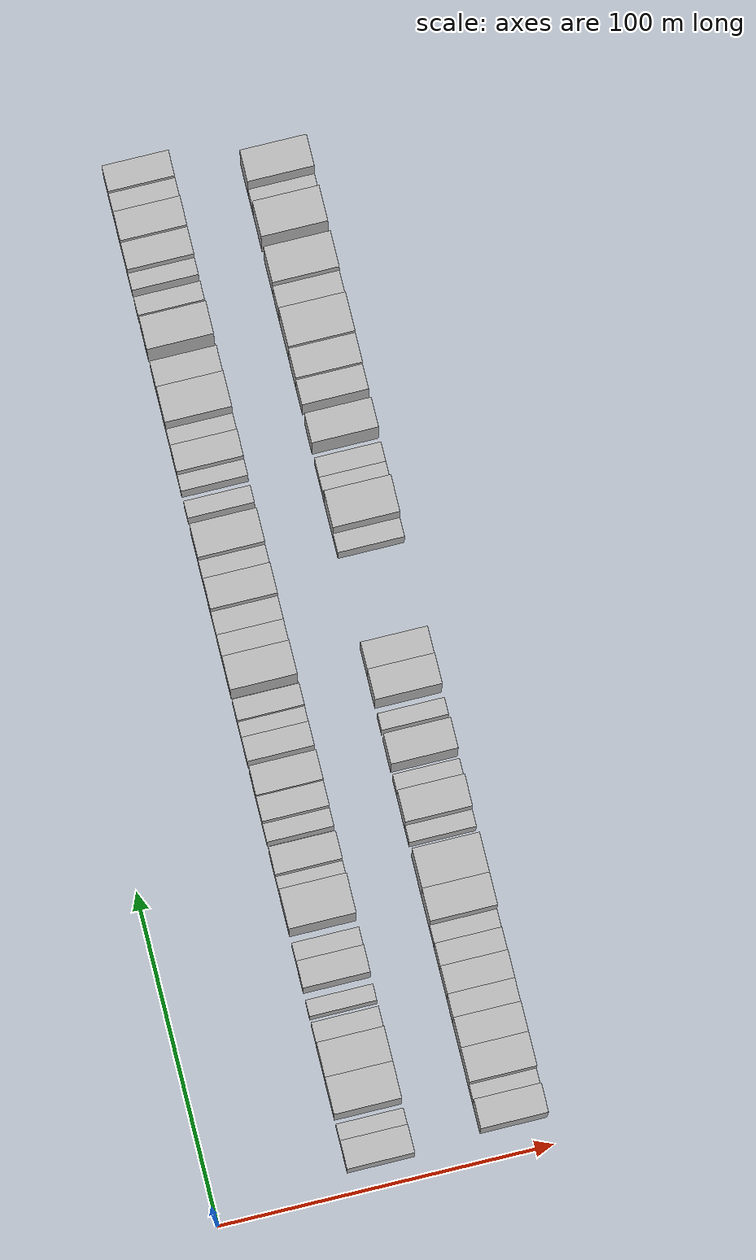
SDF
<sdf version="1.6">
 <world name="default">
  <model name="building_33">
   <static>1</static>
   <pose>50.0000 10.4126 0 0.000000 0.000000 0.000000</pose>
   <link name="link">
    <pose>0 0 9.00 0 0 0</pose>
    <collision name="collision"><geometry><box><size>20.0000 8.4670 18.0000</size></box></geometry></collision>
    <visual name="visual">
     <cast_shadows>0</cast_shadows>
     <geometry><box><size>20.0000 8.4670 18.0000</size></box></geometry>
     <material>
      <script>
       <uri>model://HANNAS_wall/materials/scripts</uri>
       <uri>model://HANNAS_wall/materials/textures</uri>
       <name>vrc/HANNAS_wall</name>
      </script>
     </material>
    </visual>
   </link>
  </model>
  <model name="building_34">
   <static>1</static>
   <pose>50.0000 17.2850 0 0.000000 0.000000 0.000000</pose>
   <link name="link">
    <pose>0 0 6.00 0 0 0</pose>
    <collision name="collision"><geometry><box><size>20.0000 5.2779 12.0000</size></box></geometry></collision>
    <visual name="visual">
     <cast_shadows>0</cast_shadows>
     <geometry><box><size>20.0000 5.2779 12.0000</size></box></geometry>
     <material>
      <script>
       <uri>model://HANNAS_wall/materials/scripts</uri>
       <uri>model://HANNAS_wall/materials/textures</uri>
       <name>vrc/HANNAS_wall</name>
      </script>
     </material>
    </visual>
   </link>
  </model>
  <model name="building_35">
   <static>1</static>
   <pose>50.0000 27.4227 0 0.000000 0.000000 0.000000</pose>
   <link name="link">
    <pose>0 0 12.00 0 0 0</pose>
    <collision name="collision"><geometry><box><size>20.0000 10.9975 24.0000</size></box></geometry></collision>
    <visual name="visual">
     <cast_shadows>0</cast_shadows>
     <geometry><box><size>20.0000 10.9975 24.0000</size></box></geometry>
     <material>
      <script>
       <uri>model://HANNAS_wall/materials/scripts</uri>
       <uri>model://HANNAS_wall/materials/textures</uri>
       <name>vrc/HANNAS_wall</name>
      </script>
     </material>
    </visual>
   </link>
  </model>
  <model name="building_36">
   <static>1</static>
   <pose>50.0000 38.0736 0 0.000000 0.000000 0.000000</pose>
   <link name="link">
    <pose>0 0 12.00 0 0 0</pose>
    <collision name="collision"><geometry><box><size>20.0000 10.3042 24.0000</size></box></geometry></collision>
    <visual name="visual">
     <cast_shadows>0</cast_shadows>
     <geometry><box><size>20.0000 10.3042 24.0000</size></box></geometry>
     <material>
      <script>
       <uri>model://HANNAS_wall/materials/scripts</uri>
       <uri>model://HANNAS_wall/materials/textures</uri>
       <name>vrc/HANNAS_wall</name>
      </script>
     </material>
    </visual>
   </link>
  </model>
  <model name="building_37">
   <static>1</static>
   <pose>50.0000 46.5629 0 0.000000 0.000000 0.000000</pose>
   <link name="link">
    <pose>0 0 7.50 0 0 0</pose>
    <collision name="collision"><geometry><box><size>20.0000 6.6744 15.0000</size></box></geometry></collision>
    <visual name="visual">
     <cast_shadows>0</cast_shadows>
     <geometry><box><size>20.0000 6.6744 15.0000</size></box></geometry>
     <material>
      <script>
       <uri>model://HANNAS_wall/materials/scripts</uri>
       <uri>model://HANNAS_wall/materials/textures</uri>
       <name>vrc/HANNAS_wall</name>
      </script>
     </material>
    </visual>
   </link>
  </model>
  <model name="building_38">
   <static>1</static>
   <pose>50.0000 54.3566 0 0.000000 0.000000 0.000000</pose>
   <link name="link">
    <pose>0 0 6.00 0 0 0</pose>
    <collision name="collision"><geometry><box><size>20.0000 4.9131 12.0000</size></box></geometry></collision>
    <visual name="visual">
     <cast_shadows>0</cast_shadows>
     <geometry><box><size>20.0000 4.9131 12.0000</size></box></geometry>
     <material>
      <script>
       <uri>model://HANNAS_wall/materials/scripts</uri>
       <uri>model://HANNAS_wall/materials/textures</uri>
       <name>vrc/HANNAS_wall</name>
      </script>
     </material>
    </visual>
   </link>
  </model>
  <model name="building_39">
   <static>1</static>
   <pose>50.0000 63.8687 0 0.000000 0.000000 0.000000</pose>
   <link name="link">
    <pose>0 0 9.00 0 0 0</pose>
    <collision name="collision"><geometry><box><size>20.0000 8.1110 18.0000</size></box></geometry></collision>
    <visual name="visual">
     <cast_shadows>0</cast_shadows>
     <geometry><box><size>20.0000 8.1110 18.0000</size></box></geometry>
     <material>
      <script>
       <uri>model://HANNAS_wall/materials/scripts</uri>
       <uri>model://HANNAS_wall/materials/textures</uri>
       <name>vrc/HANNAS_wall</name>
      </script>
     </material>
    </visual>
   </link>
  </model>
  <model name="building_40">
   <static>1</static>
   <pose>50.0000 70.8743 0 0.000000 0.000000 0.000000</pose>
   <link name="link">
    <pose>0 0 6.00 0 0 0</pose>
    <collision name="collision"><geometry><box><size>20.0000 5.9002 12.0000</size></box></geometry></collision>
    <visual name="visual">
     <cast_shadows>0</cast_shadows>
     <geometry><box><size>20.0000 5.9002 12.0000</size></box></geometry>
     <material>
      <script>
       <uri>model://HANNAS_wall/materials/scripts</uri>
       <uri>model://HANNAS_wall/materials/textures</uri>
       <name>vrc/HANNAS_wall</name>
      </script>
     </material>
    </visual>
   </link>
  </model>
  <model name="building_41">
   <static>1</static>
   <pose>50.0000 82.7837 0 0.000000 0.000000 0.000000</pose>
   <link name="link">
    <pose>0 0 12.00 0 0 0</pose>
    <collision name="collision"><geometry><box><size>20.0000 11.9186 24.0000</size></box></geometry></collision>
    <visual name="visual">
     <cast_shadows>0</cast_shadows>
     <geometry><box><size>20.0000 11.9186 24.0000</size></box></geometry>
     <material>
      <script>
       <uri>model://HANNAS_wall/materials/scripts</uri>
       <uri>model://HANNAS_wall/materials/textures</uri>
       <name>vrc/HANNAS_wall</name>
      </script>
     </material>
    </visual>
   </link>
  </model>
  <model name="building_42">
   <static>1</static>
   <pose>50.0000 91.1797 0 0.000000 0.000000 0.000000</pose>
   <link name="link">
    <pose>0 0 6.00 0 0 0</pose>
    <collision name="collision"><geometry><box><size>20.0000 4.8735 12.0000</size></box></geometry></collision>
    <visual name="visual">
     <cast_shadows>0</cast_shadows>
     <geometry><box><size>20.0000 4.8735 12.0000</size></box></geometry>
     <material>
      <script>
       <uri>model://HANNAS_wall/materials/scripts</uri>
       <uri>model://HANNAS_wall/materials/textures</uri>
       <name>vrc/HANNAS_wall</name>
      </script>
     </material>
    </visual>
   </link>
  </model>
  <model name="building_43">
   <static>1</static>
   <pose>50.0000 97.7854 0 0.000000 0.000000 0.000000</pose>
   <link name="link">
    <pose>0 0 9.00 0 0 0</pose>
    <collision name="collision"><geometry><box><size>20.0000 8.3379 18.0000</size></box></geometry></collision>
    <visual name="visual">
     <cast_shadows>0</cast_shadows>
     <geometry><box><size>20.0000 8.3379 18.0000</size></box></geometry>
     <material>
      <script>
       <uri>model://HANNAS_wall/materials/scripts</uri>
       <uri>model://HANNAS_wall/materials/textures</uri>
       <name>vrc/HANNAS_wall</name>
      </script>
     </material>
    </visual>
   </link>
  </model>
  <model name="building_44">
   <static>1</static>
   <pose>50.0000 106.7046 0 0.000000 0.000000 0.000000</pose>
   <link name="link">
    <pose>0 0 6.00 0 0 0</pose>
    <collision name="collision"><geometry><box><size>20.0000 5.5005 12.0000</size></box></geometry></collision>
    <visual name="visual">
     <cast_shadows>0</cast_shadows>
     <geometry><box><size>20.0000 5.5005 12.0000</size></box></geometry>
     <material>
      <script>
       <uri>model://HANNAS_wall/materials/scripts</uri>
       <uri>model://HANNAS_wall/materials/textures</uri>
       <name>vrc/HANNAS_wall</name>
      </script>
     </material>
    </visual>
   </link>
  </model>
  <model name="building_45">
   <static>1</static>
   <pose>50.0000 113.2035 0 0.000000 0.000000 0.000000</pose>
   <link name="link">
    <pose>0 0 9.00 0 0 0</pose>
    <collision name="collision"><geometry><box><size>20.0000 7.4973 18.0000</size></box></geometry></collision>
    <visual name="visual">
     <cast_shadows>0</cast_shadows>
     <geometry><box><size>20.0000 7.4973 18.0000</size></box></geometry>
     <material>
      <script>
       <uri>model://HANNAS_wall/materials/scripts</uri>
       <uri>model://HANNAS_wall/materials/textures</uri>
       <name>vrc/HANNAS_wall</name>
      </script>
     </material>
    </visual>
   </link>
  </model>
  <model name="building_46">
   <static>1</static>
   <pose>50.0000 121.3791 0 0.000000 0.000000 0.000000</pose>
   <link name="link">
    <pose>0 0 10.50 0 0 0</pose>
    <collision name="collision"><geometry><box><size>20.0000 8.8538 21.0000</size></box></geometry></collision>
    <visual name="visual">
     <cast_shadows>0</cast_shadows>
     <geometry><box><size>20.0000 8.8538 21.0000</size></box></geometry>
     <material>
      <script>
       <uri>model://HANNAS_wall/materials/scripts</uri>
       <uri>model://HANNAS_wall/materials/textures</uri>
       <name>vrc/HANNAS_wall</name>
      </script>
     </material>
    </visual>
   </link>
  </model>
  <model name="building_47">
   <static>1</static>
   <pose>50.0000 131.4339 0 0.000000 0.000000 0.000000</pose>
   <link name="link">
    <pose>0 0 7.50 0 0 0</pose>
    <collision name="collision"><geometry><box><size>20.0000 7.2557 15.0000</size></box></geometry></collision>
    <visual name="visual">
     <cast_shadows>0</cast_shadows>
     <geometry><box><size>20.0000 7.2557 15.0000</size></box></geometry>
     <material>
      <script>
       <uri>model://HANNAS_wall/materials/scripts</uri>
       <uri>model://HANNAS_wall/materials/textures</uri>
       <name>vrc/HANNAS_wall</name>
      </script>
     </material>
    </visual>
   </link>
  </model>
  <model name="building_48">
   <static>1</static>
   <pose>50.0000 137.5498 0 0.000000 0.000000 0.000000</pose>
   <link name="link">
    <pose>0 0 6.00 0 0 0</pose>
    <collision name="collision"><geometry><box><size>20.0000 4.9761 12.0000</size></box></geometry></collision>
    <visual name="visual">
     <cast_shadows>0</cast_shadows>
     <geometry><box><size>20.0000 4.9761 12.0000</size></box></geometry>
     <material>
      <script>
       <uri>model://HANNAS_wall/materials/scripts</uri>
       <uri>model://HANNAS_wall/materials/textures</uri>
       <name>vrc/HANNAS_wall</name>
      </script>
     </material>
    </visual>
   </link>
  </model>
  <model name="building_49">
   <static>1</static>
   <pose>50.0000 143.2701 0 0.000000 0.000000 0.000000</pose>
   <link name="link">
    <pose>0 0 7.50 0 0 0</pose>
    <collision name="collision"><geometry><box><size>20.0000 6.4646 15.0000</size></box></geometry></collision>
    <visual name="visual">
     <cast_shadows>0</cast_shadows>
     <geometry><box><size>20.0000 6.4646 15.0000</size></box></geometry>
     <material>
      <script>
       <uri>model://HANNAS_wall/materials/scripts</uri>
       <uri>model://HANNAS_wall/materials/textures</uri>
       <name>vrc/HANNAS_wall</name>
      </script>
     </material>
    </visual>
   </link>
  </model>
  <model name="building_50">
   <static>1</static>
   <pose>50.0000 153.5760 0 0.000000 0.000000 0.000000</pose>
   <link name="link">
    <pose>0 0 10.50 0 0 0</pose>
    <collision name="collision"><geometry><box><size>20.0000 10.1470 21.0000</size></box></geometry></collision>
    <visual name="visual">
     <cast_shadows>0</cast_shadows>
     <geometry><box><size>20.0000 10.1470 21.0000</size></box></geometry>
     <material>
      <script>
       <uri>model://HANNAS_wall/materials/scripts</uri>
       <uri>model://HANNAS_wall/materials/textures</uri>
       <name>vrc/HANNAS_wall</name>
      </script>
     </material>
    </visual>
   </link>
  </model>
  <model name="building_51">
   <static>1</static>
   <pose>50.0000 162.2512 0 0.000000 0.000000 0.000000</pose>
   <link name="link">
    <pose>0 0 7.50 0 0 0</pose>
    <collision name="collision"><geometry><box><size>20.0000 7.2035 15.0000</size></box></geometry></collision>
    <visual name="visual">
     <cast_shadows>0</cast_shadows>
     <geometry><box><size>20.0000 7.2035 15.0000</size></box></geometry>
     <material>
      <script>
       <uri>model://HANNAS_wall/materials/scripts</uri>
       <uri>model://HANNAS_wall/materials/textures</uri>
       <name>vrc/HANNAS_wall</name>
      </script>
     </material>
    </visual>
   </link>
  </model>
  <model name="building_52">
   <static>1</static>
   <pose>50.0000 169.3217 0 0.000000 0.000000 0.000000</pose>
   <link name="link">
    <pose>0 0 7.50 0 0 0</pose>
    <collision name="collision"><geometry><box><size>20.0000 6.9376 15.0000</size></box></geometry></collision>
    <visual name="visual">
     <cast_shadows>0</cast_shadows>
     <geometry><box><size>20.0000 6.9376 15.0000</size></box></geometry>
     <material>
      <script>
       <uri>model://HANNAS_wall/materials/scripts</uri>
       <uri>model://HANNAS_wall/materials/textures</uri>
       <name>vrc/HANNAS_wall</name>
      </script>
     </material>
    </visual>
   </link>
  </model>
  <model name="building_53">
   <static>1</static>
   <pose>50.0000 177.3946 0 0.000000 0.000000 0.000000</pose>
   <link name="link">
    <pose>0 0 10.50 0 0 0</pose>
    <collision name="collision"><geometry><box><size>20.0000 9.2082 21.0000</size></box></geometry></collision>
    <visual name="visual">
     <cast_shadows>0</cast_shadows>
     <geometry><box><size>20.0000 9.2082 21.0000</size></box></geometry>
     <material>
      <script>
       <uri>model://HANNAS_wall/materials/scripts</uri>
       <uri>model://HANNAS_wall/materials/textures</uri>
       <name>vrc/HANNAS_wall</name>
      </script>
     </material>
    </visual>
   </link>
  </model>
  <model name="building_54">
   <static>1</static>
   <pose>50.0000 185.1473 0 0.000000 0.000000 0.000000</pose>
   <link name="link">
    <pose>0 0 7.50 0 0 0</pose>
    <collision name="collision"><geometry><box><size>20.0000 6.2972 15.0000</size></box></geometry></collision>
    <visual name="visual">
     <cast_shadows>0</cast_shadows>
     <geometry><box><size>20.0000 6.2972 15.0000</size></box></geometry>
     <material>
      <script>
       <uri>model://HANNAS_wall/materials/scripts</uri>
       <uri>model://HANNAS_wall/materials/textures</uri>
       <name>vrc/HANNAS_wall</name>
      </script>
     </material>
    </visual>
   </link>
  </model>
  <model name="building_55">
   <static>1</static>
   <pose>50.0000 193.3929 0 0.000000 0.000000 0.000000</pose>
   <link name="link">
    <pose>0 0 10.50 0 0 0</pose>
    <collision name="collision"><geometry><box><size>20.0000 10.1941 21.0000</size></box></geometry></collision>
    <visual name="visual">
     <cast_shadows>0</cast_shadows>
     <geometry><box><size>20.0000 10.1941 21.0000</size></box></geometry>
     <material>
      <script>
       <uri>model://HANNAS_wall/materials/scripts</uri>
       <uri>model://HANNAS_wall/materials/textures</uri>
       <name>vrc/HANNAS_wall</name>
      </script>
     </material>
    </visual>
   </link>
  </model>
  <model name="building_56">
   <static>1</static>
   <pose>50.0000 204.0819 0 0.000000 0.000000 0.000000</pose>
   <link name="link">
    <pose>0 0 6.00 0 0 0</pose>
    <collision name="collision"><geometry><box><size>20.0000 5.1838 12.0000</size></box></geometry></collision>
    <visual name="visual">
     <cast_shadows>0</cast_shadows>
     <geometry><box><size>20.0000 5.1838 12.0000</size></box></geometry>
     <material>
      <script>
       <uri>model://HANNAS_wall/materials/scripts</uri>
       <uri>model://HANNAS_wall/materials/textures</uri>
       <name>vrc/HANNAS_wall</name>
      </script>
     </material>
    </visual>
   </link>
  </model>
  <model name="building_57">
   <static>1</static>
   <pose>50.0000 212.1471 0 0.000000 0.000000 0.000000</pose>
   <link name="link">
    <pose>0 0 6.00 0 0 0</pose>
    <collision name="collision"><geometry><box><size>20.0000 4.9467 12.0000</size></box></geometry></collision>
    <visual name="visual">
     <cast_shadows>0</cast_shadows>
     <geometry><box><size>20.0000 4.9467 12.0000</size></box></geometry>
     <material>
      <script>
       <uri>model://HANNAS_wall/materials/scripts</uri>
       <uri>model://HANNAS_wall/materials/textures</uri>
       <name>vrc/HANNAS_wall</name>
      </script>
     </material>
    </visual>
   </link>
  </model>
  <model name="building_58">
   <static>1</static>
   <pose>50.0000 218.6658 0 0.000000 0.000000 0.000000</pose>
   <link name="link">
    <pose>0 0 9.00 0 0 0</pose>
    <collision name="collision"><geometry><box><size>20.0000 8.0906 18.0000</size></box></geometry></collision>
    <visual name="visual">
     <cast_shadows>0</cast_shadows>
     <geometry><box><size>20.0000 8.0906 18.0000</size></box></geometry>
     <material>
      <script>
       <uri>model://HANNAS_wall/materials/scripts</uri>
       <uri>model://HANNAS_wall/materials/textures</uri>
       <name>vrc/HANNAS_wall</name>
      </script>
     </material>
    </visual>
   </link>
  </model>
  <model name="building_59">
   <static>1</static>
   <pose>50.0000 225.6367 0 0.000000 0.000000 0.000000</pose>
   <link name="link">
    <pose>0 0 6.00 0 0 0</pose>
    <collision name="collision"><geometry><box><size>20.0000 5.8513 12.0000</size></box></geometry></collision>
    <visual name="visual">
     <cast_shadows>0</cast_shadows>
     <geometry><box><size>20.0000 5.8513 12.0000</size></box></geometry>
     <material>
      <script>
       <uri>model://HANNAS_wall/materials/scripts</uri>
       <uri>model://HANNAS_wall/materials/textures</uri>
       <name>vrc/HANNAS_wall</name>
      </script>
     </material>
    </visual>
   </link>
  </model>
  <model name="building_60">
   <static>1</static>
   <pose>50.0000 233.9612 0 0.000000 0.000000 0.000000</pose>
   <link name="link">
    <pose>0 0 12.00 0 0 0</pose>
    <collision name="collision"><geometry><box><size>20.0000 10.7978 24.0000</size></box></geometry></collision>
    <visual name="visual">
     <cast_shadows>0</cast_shadows>
     <geometry><box><size>20.0000 10.7978 24.0000</size></box></geometry>
     <material>
      <script>
       <uri>model://HANNAS_wall/materials/scripts</uri>
       <uri>model://HANNAS_wall/materials/textures</uri>
       <name>vrc/HANNAS_wall</name>
      </script>
     </material>
    </visual>
   </link>
  </model>
  <model name="building_61">
   <static>1</static>
   <pose>50.0000 243.7472 0 0.000000 0.000000 0.000000</pose>
   <link name="link">
    <pose>0 0 9.00 0 0 0</pose>
    <collision name="collision"><geometry><box><size>20.0000 8.7741 18.0000</size></box></geometry></collision>
    <visual name="visual">
     <cast_shadows>0</cast_shadows>
     <geometry><box><size>20.0000 8.7741 18.0000</size></box></geometry>
     <material>
      <script>
       <uri>model://HANNAS_wall/materials/scripts</uri>
       <uri>model://HANNAS_wall/materials/textures</uri>
       <name>vrc/HANNAS_wall</name>
      </script>
     </material>
    </visual>
   </link>
  </model>
  <model name="building_62">
   <static>1</static>
   <pose>50.0000 256.1199 0 0.000000 0.000000 0.000000</pose>
   <link name="link">
    <pose>0 0 10.50 0 0 0</pose>
    <collision name="collision"><geometry><box><size>20.0000 9.9713 21.0000</size></box></geometry></collision>
    <visual name="visual">
     <cast_shadows>0</cast_shadows>
     <geometry><box><size>20.0000 9.9713 21.0000</size></box></geometry>
     <material>
      <script>
       <uri>model://HANNAS_wall/materials/scripts</uri>
       <uri>model://HANNAS_wall/materials/textures</uri>
       <name>vrc/HANNAS_wall</name>
      </script>
     </material>
    </visual>
   </link>
  </model>
  <model name="building_63">
   <static>1</static>
   <pose>50.0000 265.9240 0 0.000000 0.000000 0.000000</pose>
   <link name="link">
    <pose>0 0 6.00 0 0 0</pose>
    <collision name="collision"><geometry><box><size>20.0000 5.6369 12.0000</size></box></geometry></collision>
    <visual name="visual">
     <cast_shadows>0</cast_shadows>
     <geometry><box><size>20.0000 5.6369 12.0000</size></box></geometry>
     <material>
      <script>
       <uri>model://HANNAS_wall/materials/scripts</uri>
       <uri>model://HANNAS_wall/materials/textures</uri>
       <name>vrc/HANNAS_wall</name>
      </script>
     </material>
    </visual>
   </link>
  </model>
  <model name="building_64">
   <static>1</static>
   <pose>50.0000 273.3273 0 0.000000 0.000000 0.000000</pose>
   <link name="link">
    <pose>0 0 6.00 0 0 0</pose>
    <collision name="collision"><geometry><box><size>20.0000 5.1697 12.0000</size></box></geometry></collision>
    <visual name="visual">
     <cast_shadows>0</cast_shadows>
     <geometry><box><size>20.0000 5.1697 12.0000</size></box></geometry>
     <material>
      <script>
       <uri>model://HANNAS_wall/materials/scripts</uri>
       <uri>model://HANNAS_wall/materials/textures</uri>
       <name>vrc/HANNAS_wall</name>
      </script>
     </material>
    </visual>
   </link>
  </model>
  <model name="building_65">
   <static>1</static>
   <pose>50.0000 280.0449 0 0.000000 0.000000 0.000000</pose>
   <link name="link">
    <pose>0 0 9.00 0 0 0</pose>
    <collision name="collision"><geometry><box><size>20.0000 8.2655 18.0000</size></box></geometry></collision>
    <visual name="visual">
     <cast_shadows>0</cast_shadows>
     <geometry><box><size>20.0000 8.2655 18.0000</size></box></geometry>
     <material>
      <script>
       <uri>model://HANNAS_wall/materials/scripts</uri>
       <uri>model://HANNAS_wall/materials/textures</uri>
       <name>vrc/HANNAS_wall</name>
      </script>
     </material>
    </visual>
   </link>
  </model>
  <model name="building_66">
   <static>1</static>
   <pose>50.0000 288.5966 0 0.000000 0.000000 0.000000</pose>
   <link name="link">
    <pose>0 0 10.50 0 0 0</pose>
    <collision name="collision"><geometry><box><size>20.0000 8.8379 21.0000</size></box></geometry></collision>
    <visual name="visual">
     <cast_shadows>0</cast_shadows>
     <geometry><box><size>20.0000 8.8379 21.0000</size></box></geometry>
     <material>
      <script>
       <uri>model://HANNAS_wall/materials/scripts</uri>
       <uri>model://HANNAS_wall/materials/textures</uri>
       <name>vrc/HANNAS_wall</name>
      </script>
     </material>
    </visual>
   </link>
  </model>
  <model name="building_67">
   <static>1</static>
   <pose>50.0000 296.3832 0 0.000000 0.000000 0.000000</pose>
   <link name="link">
    <pose>0 0 7.50 0 0 0</pose>
    <collision name="collision"><geometry><box><size>20.0000 6.7354 15.0000</size></box></geometry></collision>
    <visual name="visual">
     <cast_shadows>0</cast_shadows>
     <geometry><box><size>20.0000 6.7354 15.0000</size></box></geometry>
     <material>
      <script>
       <uri>model://HANNAS_wall/materials/scripts</uri>
       <uri>model://HANNAS_wall/materials/textures</uri>
       <name>vrc/HANNAS_wall</name>
      </script>
     </material>
    </visual>
   </link>
  </model>
  <model name="building_68">
   <static>1</static>
   <pose>50.0000 303.6786 0 0.000000 0.000000 0.000000</pose>
   <link name="link">
    <pose>0 0 9.00 0 0 0</pose>
    <collision name="collision"><geometry><box><size>20.0000 7.8553 18.0000</size></box></geometry></collision>
    <visual name="visual">
     <cast_shadows>0</cast_shadows>
     <geometry><box><size>20.0000 7.8553 18.0000</size></box></geometry>
     <material>
      <script>
       <uri>model://HANNAS_wall/materials/scripts</uri>
       <uri>model://HANNAS_wall/materials/textures</uri>
       <name>vrc/HANNAS_wall</name>
      </script>
     </material>
    </visual>
   </link>
  </model>
  <model name="building_103">
   <static>1</static>
   <pose>90.0000 12.5319 0 0.000000 0.000000 0.000000</pose>
   <link name="link">
    <pose>0 0 10.50 0 0 0</pose>
    <collision name="collision"><geometry><box><size>20.0000 8.7368 21.0000</size></box></geometry></collision>
    <visual name="visual">
     <cast_shadows>0</cast_shadows>
     <geometry><box><size>20.0000 8.7368 21.0000</size></box></geometry>
     <material>
      <script>
       <uri>model://HANNAS_wall/materials/scripts</uri>
       <uri>model://HANNAS_wall/materials/textures</uri>
       <name>vrc/HANNAS_wall</name>
      </script>
     </material>
    </visual>
   </link>
  </model>
  <model name="building_104">
   <static>1</static>
   <pose>90.0000 19.4082 0 0.000000 0.000000 0.000000</pose>
   <link name="link">
    <pose>0 0 6.00 0 0 0</pose>
    <collision name="collision"><geometry><box><size>20.0000 5.0158 12.0000</size></box></geometry></collision>
    <visual name="visual">
     <cast_shadows>0</cast_shadows>
     <geometry><box><size>20.0000 5.0158 12.0000</size></box></geometry>
     <material>
      <script>
       <uri>model://HANNAS_wall/materials/scripts</uri>
       <uri>model://HANNAS_wall/materials/textures</uri>
       <name>vrc/HANNAS_wall</name>
      </script>
     </material>
    </visual>
   </link>
  </model>
  <model name="building_105">
   <static>1</static>
   <pose>90.0000 27.0254 0 0.000000 0.000000 0.000000</pose>
   <link name="link">
    <pose>0 0 10.50 0 0 0</pose>
    <collision name="collision"><geometry><box><size>20.0000 10.2185 21.0000</size></box></geometry></collision>
    <visual name="visual">
     <cast_shadows>0</cast_shadows>
     <geometry><box><size>20.0000 10.2185 21.0000</size></box></geometry>
     <material>
      <script>
       <uri>model://HANNAS_wall/materials/scripts</uri>
       <uri>model://HANNAS_wall/materials/textures</uri>
       <name>vrc/HANNAS_wall</name>
      </script>
     </material>
    </visual>
   </link>
  </model>
  <model name="building_106">
   <static>1</static>
   <pose>90.0000 36.6132 0 0.000000 0.000000 0.000000</pose>
   <link name="link">
    <pose>0 0 10.50 0 0 0</pose>
    <collision name="collision"><geometry><box><size>20.0000 8.9573 21.0000</size></box></geometry></collision>
    <visual name="visual">
     <cast_shadows>0</cast_shadows>
     <geometry><box><size>20.0000 8.9573 21.0000</size></box></geometry>
     <material>
      <script>
       <uri>model://HANNAS_wall/materials/scripts</uri>
       <uri>model://HANNAS_wall/materials/textures</uri>
       <name>vrc/HANNAS_wall</name>
      </script>
     </material>
    </visual>
   </link>
  </model>
  <model name="building_107">
   <static>1</static>
   <pose>90.0000 44.7175 0 0.000000 0.000000 0.000000</pose>
   <link name="link">
    <pose>0 0 9.00 0 0 0</pose>
    <collision name="collision"><geometry><box><size>20.0000 7.2513 18.0000</size></box></geometry></collision>
    <visual name="visual">
     <cast_shadows>0</cast_shadows>
     <geometry><box><size>20.0000 7.2513 18.0000</size></box></geometry>
     <material>
      <script>
       <uri>model://HANNAS_wall/materials/scripts</uri>
       <uri>model://HANNAS_wall/materials/textures</uri>
       <name>vrc/HANNAS_wall</name>
      </script>
     </material>
    </visual>
   </link>
  </model>
  <model name="building_108">
   <static>1</static>
   <pose>90.0000 52.5017 0 0.000000 0.000000 0.000000</pose>
   <link name="link">
    <pose>0 0 9.00 0 0 0</pose>
    <collision name="collision"><geometry><box><size>20.0000 8.3170 18.0000</size></box></geometry></collision>
    <visual name="visual">
     <cast_shadows>0</cast_shadows>
     <geometry><box><size>20.0000 8.3170 18.0000</size></box></geometry>
     <material>
      <script>
       <uri>model://HANNAS_wall/materials/scripts</uri>
       <uri>model://HANNAS_wall/materials/textures</uri>
       <name>vrc/HANNAS_wall</name>
      </script>
     </material>
    </visual>
   </link>
  </model>
  <model name="building_109">
   <static>1</static>
   <pose>90.0000 60.1761 0 0.000000 0.000000 0.000000</pose>
   <link name="link">
    <pose>0 0 7.50 0 0 0</pose>
    <collision name="collision"><geometry><box><size>20.0000 7.0318 15.0000</size></box></geometry></collision>
    <visual name="visual">
     <cast_shadows>0</cast_shadows>
     <geometry><box><size>20.0000 7.0318 15.0000</size></box></geometry>
     <material>
      <script>
       <uri>model://HANNAS_wall/materials/scripts</uri>
       <uri>model://HANNAS_wall/materials/textures</uri>
       <name>vrc/HANNAS_wall</name>
      </script>
     </material>
    </visual>
   </link>
  </model>
  <model name="building_110">
   <static>1</static>
   <pose>90.0000 66.5430 0 0.000000 0.000000 0.000000</pose>
   <link name="link">
    <pose>0 0 6.00 0 0 0</pose>
    <collision name="collision"><geometry><box><size>20.0000 5.7021 12.0000</size></box></geometry></collision>
    <visual name="visual">
     <cast_shadows>0</cast_shadows>
     <geometry><box><size>20.0000 5.7021 12.0000</size></box></geometry>
     <material>
      <script>
       <uri>model://HANNAS_wall/materials/scripts</uri>
       <uri>model://HANNAS_wall/materials/textures</uri>
       <name>vrc/HANNAS_wall</name>
      </script>
     </material>
    </visual>
   </link>
  </model>
  <model name="building_111">
   <static>1</static>
   <pose>90.0000 74.2761 0 0.000000 0.000000 0.000000</pose>
   <link name="link">
    <pose>0 0 12.00 0 0 0</pose>
    <collision name="collision"><geometry><box><size>20.0000 9.7640 24.0000</size></box></geometry></collision>
    <visual name="visual">
     <cast_shadows>0</cast_shadows>
     <geometry><box><size>20.0000 9.7640 24.0000</size></box></geometry>
     <material>
      <script>
       <uri>model://HANNAS_wall/materials/scripts</uri>
       <uri>model://HANNAS_wall/materials/textures</uri>
       <name>vrc/HANNAS_wall</name>
      </script>
     </material>
    </visual>
   </link>
  </model>
  <model name="building_112">
   <static>1</static>
   <pose>90.0000 85.1190 0 0.000000 0.000000 0.000000</pose>
   <link name="link">
    <pose>0 0 12.00 0 0 0</pose>
    <collision name="collision"><geometry><box><size>20.0000 11.9219 24.0000</size></box></geometry></collision>
    <visual name="visual">
     <cast_shadows>0</cast_shadows>
     <geometry><box><size>20.0000 11.9219 24.0000</size></box></geometry>
     <material>
      <script>
       <uri>model://HANNAS_wall/materials/scripts</uri>
       <uri>model://HANNAS_wall/materials/textures</uri>
       <name>vrc/HANNAS_wall</name>
      </script>
     </material>
    </visual>
   </link>
  </model>
  <model name="building_113">
   <static>1</static>
   <pose>90.0000 96.6389 0 0.000000 0.000000 0.000000</pose>
   <link name="link">
    <pose>0 0 6.00 0 0 0</pose>
    <collision name="collision"><geometry><box><size>20.0000 5.1179 12.0000</size></box></geometry></collision>
    <visual name="visual">
     <cast_shadows>0</cast_shadows>
     <geometry><box><size>20.0000 5.1179 12.0000</size></box></geometry>
     <material>
      <script>
       <uri>model://HANNAS_wall/materials/scripts</uri>
       <uri>model://HANNAS_wall/materials/textures</uri>
       <name>vrc/HANNAS_wall</name>
      </script>
     </material>
    </visual>
   </link>
  </model>
  <model name="building_114">
   <static>1</static>
   <pose>90.0000 104.0124 0 0.000000 0.000000 0.000000</pose>
   <link name="link">
    <pose>0 0 10.50 0 0 0</pose>
    <collision name="collision"><geometry><box><size>20.0000 9.6290 21.0000</size></box></geometry></collision>
    <visual name="visual">
     <cast_shadows>0</cast_shadows>
     <geometry><box><size>20.0000 9.6290 21.0000</size></box></geometry>
     <material>
      <script>
       <uri>model://HANNAS_wall/materials/scripts</uri>
       <uri>model://HANNAS_wall/materials/textures</uri>
       <name>vrc/HANNAS_wall</name>
      </script>
     </material>
    </visual>
   </link>
  </model>
  <model name="building_115">
   <static>1</static>
   <pose>90.0000 111.6711 0 0.000000 0.000000 0.000000</pose>
   <link name="link">
    <pose>0 0 6.00 0 0 0</pose>
    <collision name="collision"><geometry><box><size>20.0000 5.6885 12.0000</size></box></geometry></collision>
    <visual name="visual">
     <cast_shadows>0</cast_shadows>
     <geometry><box><size>20.0000 5.6885 12.0000</size></box></geometry>
     <material>
      <script>
       <uri>model://HANNAS_wall/materials/scripts</uri>
       <uri>model://HANNAS_wall/materials/textures</uri>
       <name>vrc/HANNAS_wall</name>
      </script>
     </material>
    </visual>
   </link>
  </model>
  <model name="building_116">
   <static>1</static>
   <pose>90.0000 121.1224 0 0.000000 0.000000 0.000000</pose>
   <link name="link">
    <pose>0 0 10.50 0 0 0</pose>
    <collision name="collision"><geometry><box><size>20.0000 9.2140 21.0000</size></box></geometry></collision>
    <visual name="visual">
     <cast_shadows>0</cast_shadows>
     <geometry><box><size>20.0000 9.2140 21.0000</size></box></geometry>
     <material>
      <script>
       <uri>model://HANNAS_wall/materials/scripts</uri>
       <uri>model://HANNAS_wall/materials/textures</uri>
       <name>vrc/HANNAS_wall</name>
      </script>
     </material>
    </visual>
   </link>
  </model>
  <model name="building_117">
   <static>1</static>
   <pose>90.0000 130.2792 0 0.000000 0.000000 0.000000</pose>
   <link name="link">
    <pose>0 0 6.00 0 0 0</pose>
    <collision name="collision"><geometry><box><size>20.0000 5.0997 12.0000</size></box></geometry></collision>
    <visual name="visual">
     <cast_shadows>0</cast_shadows>
     <geometry><box><size>20.0000 5.0997 12.0000</size></box></geometry>
     <material>
      <script>
       <uri>model://HANNAS_wall/materials/scripts</uri>
       <uri>model://HANNAS_wall/materials/textures</uri>
       <name>vrc/HANNAS_wall</name>
      </script>
     </material>
    </visual>
   </link>
  </model>
  <model name="building_118">
   <static>1</static>
   <pose>90.0000 140.4212 0 0.000000 0.000000 0.000000</pose>
   <link name="link">
    <pose>0 0 10.50 0 0 0</pose>
    <collision name="collision"><geometry><box><size>20.0000 9.1842 21.0000</size></box></geometry></collision>
    <visual name="visual">
     <cast_shadows>0</cast_shadows>
     <geometry><box><size>20.0000 9.1842 21.0000</size></box></geometry>
     <material>
      <script>
       <uri>model://HANNAS_wall/materials/scripts</uri>
       <uri>model://HANNAS_wall/materials/textures</uri>
       <name>vrc/HANNAS_wall</name>
      </script>
     </material>
    </visual>
   </link>
  </model>
  <model name="building_119">
   <static>1</static>
   <pose>90.0000 149.2653 0 0.000000 0.000000 0.000000</pose>
   <link name="link">
    <pose>0 0 9.00 0 0 0</pose>
    <collision name="collision"><geometry><box><size>20.0000 8.5042 18.0000</size></box></geometry></collision>
    <visual name="visual">
     <cast_shadows>0</cast_shadows>
     <geometry><box><size>20.0000 8.5042 18.0000</size></box></geometry>
     <material>
      <script>
       <uri>model://HANNAS_wall/materials/scripts</uri>
       <uri>model://HANNAS_wall/materials/textures</uri>
       <name>vrc/HANNAS_wall</name>
      </script>
     </material>
    </visual>
   </link>
  </model>
  <model name="building_120">
   <static>1</static>
   <pose>90.0000 184.1886 0 0.000000 0.000000 0.000000</pose>
   <link name="link">
    <pose>0 0 6.00 0 0 0</pose>
    <collision name="collision"><geometry><box><size>20.0000 5.7808 12.0000</size></box></geometry></collision>
    <visual name="visual">
     <cast_shadows>0</cast_shadows>
     <geometry><box><size>20.0000 5.7808 12.0000</size></box></geometry>
     <material>
      <script>
       <uri>model://HANNAS_wall/materials/scripts</uri>
       <uri>model://HANNAS_wall/materials/textures</uri>
       <name>vrc/HANNAS_wall</name>
      </script>
     </material>
    </visual>
   </link>
  </model>
  <model name="building_121">
   <static>1</static>
   <pose>90.0000 192.6528 0 0.000000 0.000000 0.000000</pose>
   <link name="link">
    <pose>0 0 12.00 0 0 0</pose>
    <collision name="collision"><geometry><box><size>20.0000 11.1475 24.0000</size></box></geometry></collision>
    <visual name="visual">
     <cast_shadows>0</cast_shadows>
     <geometry><box><size>20.0000 11.1475 24.0000</size></box></geometry>
     <material>
      <script>
       <uri>model://HANNAS_wall/materials/scripts</uri>
       <uri>model://HANNAS_wall/materials/textures</uri>
       <name>vrc/HANNAS_wall</name>
      </script>
     </material>
    </visual>
   </link>
  </model>
  <model name="building_122">
   <static>1</static>
   <pose>90.0000 201.1807 0 0.000000 0.000000 0.000000</pose>
   <link name="link">
    <pose>0 0 6.00 0 0 0</pose>
    <collision name="collision"><geometry><box><size>20.0000 5.9083 12.0000</size></box></geometry></collision>
    <visual name="visual">
     <cast_shadows>0</cast_shadows>
     <geometry><box><size>20.0000 5.9083 12.0000</size></box></geometry>
     <material>
      <script>
       <uri>model://HANNAS_wall/materials/scripts</uri>
       <uri>model://HANNAS_wall/materials/textures</uri>
       <name>vrc/HANNAS_wall</name>
      </script>
     </material>
    </visual>
   </link>
  </model>
  <model name="building_123">
   <static>1</static>
   <pose>90.0000 207.0950 0 0.000000 0.000000 0.000000</pose>
   <link name="link">
    <pose>0 0 6.00 0 0 0</pose>
    <collision name="collision"><geometry><box><size>20.0000 5.9203 12.0000</size></box></geometry></collision>
    <visual name="visual">
     <cast_shadows>0</cast_shadows>
     <geometry><box><size>20.0000 5.9203 12.0000</size></box></geometry>
     <material>
      <script>
       <uri>model://HANNAS_wall/materials/scripts</uri>
       <uri>model://HANNAS_wall/materials/textures</uri>
       <name>vrc/HANNAS_wall</name>
      </script>
     </material>
    </visual>
   </link>
  </model>
  <model name="building_124">
   <static>1</static>
   <pose>90.0000 217.5665 0 0.000000 0.000000 0.000000</pose>
   <link name="link">
    <pose>0 0 10.50 0 0 0</pose>
    <collision name="collision"><geometry><box><size>20.0000 9.0226 21.0000</size></box></geometry></collision>
    <visual name="visual">
     <cast_shadows>0</cast_shadows>
     <geometry><box><size>20.0000 9.0226 21.0000</size></box></geometry>
     <material>
      <script>
       <uri>model://HANNAS_wall/materials/scripts</uri>
       <uri>model://HANNAS_wall/materials/textures</uri>
       <name>vrc/HANNAS_wall</name>
      </script>
     </material>
    </visual>
   </link>
  </model>
  <model name="building_125">
   <static>1</static>
   <pose>90.0000 228.8820 0 0.000000 0.000000 0.000000</pose>
   <link name="link">
    <pose>0 0 9.00 0 0 0</pose>
    <collision name="collision"><geometry><box><size>20.0000 7.6085 18.0000</size></box></geometry></collision>
    <visual name="visual">
     <cast_shadows>0</cast_shadows>
     <geometry><box><size>20.0000 7.6085 18.0000</size></box></geometry>
     <material>
      <script>
       <uri>model://HANNAS_wall/materials/scripts</uri>
       <uri>model://HANNAS_wall/materials/textures</uri>
       <name>vrc/HANNAS_wall</name>
      </script>
     </material>
    </visual>
   </link>
  </model>
  <model name="building_126">
   <static>1</static>
   <pose>90.0000 237.1771 0 0.000000 0.000000 0.000000</pose>
   <link name="link">
    <pose>0 0 10.50 0 0 0</pose>
    <collision name="collision"><geometry><box><size>20.0000 8.9818 21.0000</size></box></geometry></collision>
    <visual name="visual">
     <cast_shadows>0</cast_shadows>
     <geometry><box><size>20.0000 8.9818 21.0000</size></box></geometry>
     <material>
      <script>
       <uri>model://HANNAS_wall/materials/scripts</uri>
       <uri>model://HANNAS_wall/materials/textures</uri>
       <name>vrc/HANNAS_wall</name>
      </script>
     </material>
    </visual>
   </link>
  </model>
  <model name="building_127">
   <static>1</static>
   <pose>90.0000 247.5729 0 0.000000 0.000000 0.000000</pose>
   <link name="link">
    <pose>0 0 12.00 0 0 0</pose>
    <collision name="collision"><geometry><box><size>20.0000 11.8098 24.0000</size></box></geometry></collision>
    <visual name="visual">
     <cast_shadows>0</cast_shadows>
     <geometry><box><size>20.0000 11.8098 24.0000</size></box></geometry>
     <material>
      <script>
       <uri>model://HANNAS_wall/materials/scripts</uri>
       <uri>model://HANNAS_wall/materials/textures</uri>
       <name>vrc/HANNAS_wall</name>
      </script>
     </material>
    </visual>
   </link>
  </model>
  <model name="building_128">
   <static>1</static>
   <pose>90.0000 257.2922 0 0.000000 0.000000 0.000000</pose>
   <link name="link">
    <pose>0 0 9.00 0 0 0</pose>
    <collision name="collision"><geometry><box><size>20.0000 7.6287 18.0000</size></box></geometry></collision>
    <visual name="visual">
     <cast_shadows>0</cast_shadows>
     <geometry><box><size>20.0000 7.6287 18.0000</size></box></geometry>
     <material>
      <script>
       <uri>model://HANNAS_wall/materials/scripts</uri>
       <uri>model://HANNAS_wall/materials/textures</uri>
       <name>vrc/HANNAS_wall</name>
      </script>
     </material>
    </visual>
   </link>
  </model>
  <model name="building_129">
   <static>1</static>
   <pose>90.0000 266.5735 0 0.000000 0.000000 0.000000</pose>
   <link name="link">
    <pose>0 0 12.00 0 0 0</pose>
    <collision name="collision"><geometry><box><size>20.0000 10.9339 24.0000</size></box></geometry></collision>
    <visual name="visual">
     <cast_shadows>0</cast_shadows>
     <geometry><box><size>20.0000 10.9339 24.0000</size></box></geometry>
     <material>
      <script>
       <uri>model://HANNAS_wall/materials/scripts</uri>
       <uri>model://HANNAS_wall/materials/textures</uri>
       <name>vrc/HANNAS_wall</name>
      </script>
     </material>
    </visual>
   </link>
  </model>
  <model name="building_130">
   <static>1</static>
   <pose>90.0000 280.4589 0 0.000000 0.000000 0.000000</pose>
   <link name="link">
    <pose>0 0 12.00 0 0 0</pose>
    <collision name="collision"><geometry><box><size>20.0000 10.8369 24.0000</size></box></geometry></collision>
    <visual name="visual">
     <cast_shadows>0</cast_shadows>
     <geometry><box><size>20.0000 10.8369 24.0000</size></box></geometry>
     <material>
      <script>
       <uri>model://HANNAS_wall/materials/scripts</uri>
       <uri>model://HANNAS_wall/materials/textures</uri>
       <name>vrc/HANNAS_wall</name>
      </script>
     </material>
    </visual>
   </link>
  </model>
  <model name="building_131">
   <static>1</static>
   <pose>90.0000 288.8321 0 0.000000 0.000000 0.000000</pose>
   <link name="link">
    <pose>0 0 6.00 0 0 0</pose>
    <collision name="collision"><geometry><box><size>20.0000 5.9095 12.0000</size></box></geometry></collision>
    <visual name="visual">
     <cast_shadows>0</cast_shadows>
     <geometry><box><size>20.0000 5.9095 12.0000</size></box></geometry>
     <material>
      <script>
       <uri>model://HANNAS_wall/materials/scripts</uri>
       <uri>model://HANNAS_wall/materials/textures</uri>
       <name>vrc/HANNAS_wall</name>
      </script>
     </material>
    </visual>
   </link>
  </model>
  <model name="building_132">
   <static>1</static>
   <pose>90.0000 296.6006 0 0.000000 0.000000 0.000000</pose>
   <link name="link">
    <pose>0 0 12.00 0 0 0</pose>
    <collision name="collision"><geometry><box><size>20.0000 9.6276 24.0000</size></box></geometry></collision>
    <visual name="visual">
     <cast_shadows>0</cast_shadows>
     <geometry><box><size>20.0000 9.6276 24.0000</size></box></geometry>
     <material>
      <script>
       <uri>model://HANNAS_wall/materials/scripts</uri>
       <uri>model://HANNAS_wall/materials/textures</uri>
       <name>vrc/HANNAS_wall</name>
      </script>
     </material>
    </visual>
   </link>
  </model>
 </world>
</sdf>
